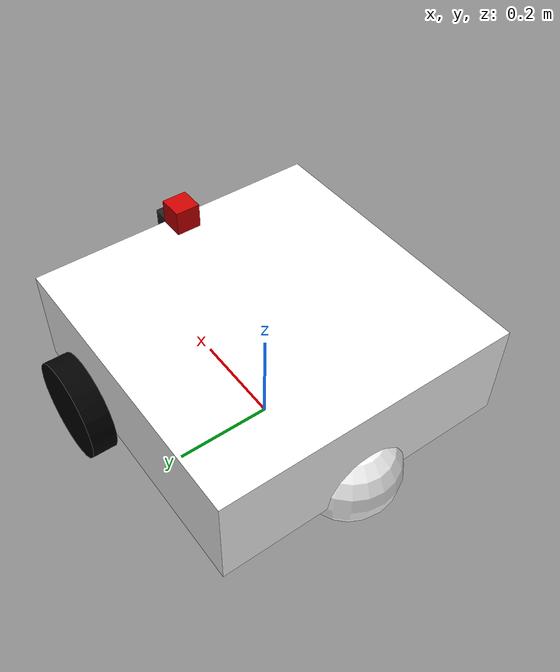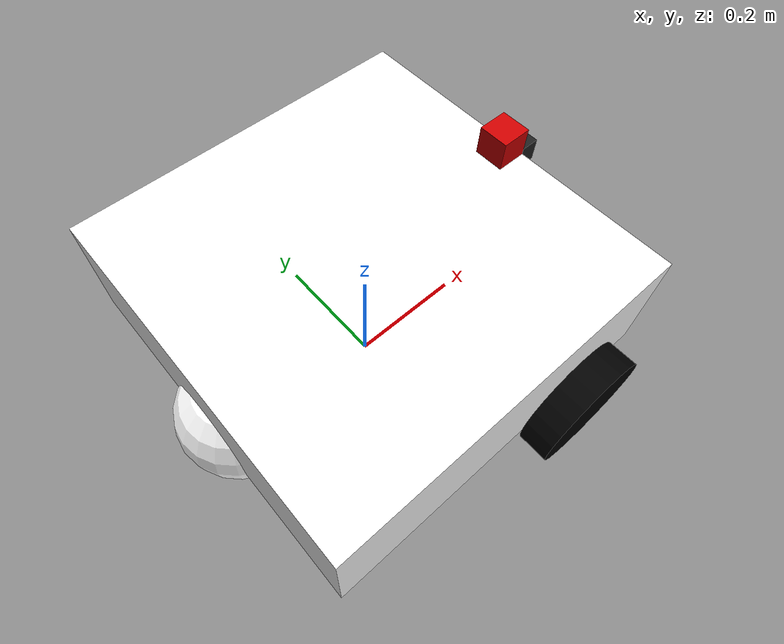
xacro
<?xml version='1.0'?>
<robot name="robot" xmlns:xacro="http://www.ros.org/wiki/xacro">
    <xacro:include filename="materials.xacro" />
    <xacro:include filename="wheel.xacro" />
    <xacro:include filename="inertial.xacro" />

    <ros2_control name="GazeboSimSystem" type="system">
        <hardware>
            <plugin>gz_ros2_control/GazeboSimSystem</plugin>
        </hardware>
        <joint name="wheel_left_joint">
            <command_interface name="velocity"/>
            <state_interface name="position"/>
            <state_interface name="velocity">
                <param name="initial_value">0.0</param>
            </state_interface>
        </joint>
        <joint name="wheel_right_joint">
            <command_interface name="velocity"/>
            <state_interface name="position"/>
            <state_interface name="velocity">
                <param name="initial_value">0.0</param>
            </state_interface>
        </joint>
    </ros2_control>

    <gazebo>
        <plugin filename="gz_ros2_control-system"
        name="gz_ros2_control::GazeboSimROS2ControlPlugin">
            <parameters>
            $(find robot_scene)/config/diff_control.yaml
            </parameters>
        </plugin>
    </gazebo>

    <link name='base_link'>
        <origin xyz="0.0 0.0 0.1" rpy="0.0 0 0.0"/>
        <visual name='base_visual'>
            <origin xyz="0.0 0.0 0.2" rpy="0.0 0.0 0.0"/>
            <geometry><box size="0.6 0.6 0.2"/></geometry>
            <material name="white"/>
        </visual>
        <xacro:inertial_box mass="1" x="0.6" y="0.6" z="0.2">
            <origin xyz="0 0 0.2" rpy="0 0 0"/>
        </xacro:inertial_box>
        <collision>
            <origin xyz="0 0 0.2" rpy="0 0 0"/>
            <geometry><box size="0.6 0.6 0.2"/></geometry>
        </collision>
    </link>

    <link name="caster_link">
        <visual name="caster_visual">
            <origin xyz="0 0 0" rpy="0 0 0"/>
            <geometry><sphere radius="0.1"/></geometry>
            <material name="white"/>
        </visual>
        <collision name="caster_collision">
            <origin xyz="0 0 0" rpy="0 0 0"/>
            <geometry><sphere radius="0.1"/></geometry>
        </collision>
        <xacro:inertial_sphere mass="0.05" radius="0.1">
            <origin xyz="0 0 0" rpy="0 0 0"/>
        </xacro:inertial_sphere>
    </link>

    <joint name="caster_joint" type="fixed">
        <origin xyz="-0.25 0 0.1" rpy="0 0 0"/>
        <parent link="base_link"/>
        <child link="caster_link"/>
    </joint>

    <gazebo reference="caster_link">
        <mu1>0.0</mu1>
        <mu2>0.0</mu2>
        <kp>1000000.0</kp>
        <kd>100.0</kd>
        <minDepth>0.001</minDepth>
        <maxVel>1.0</maxVel>
    </gazebo>

    <xacro:wheel side="left" x="0.15" y="0.325" z="0.1"/>
    <xacro:wheel side="right" x="0.15" y="-0.325" z="0.1"/>

    <link name="camera_link">
        <visual name="camera_link_visual">
         <origin xyz="0 0 0" rpy=" 0 0 0"/>
         <geometry><box size="0.04 0.04 0.04"/></geometry>
        </visual>

        <collision name="camera_link_colision">
         <origin xyz="0 0 0" rpy=" 0 0 0"/>
         <geometry><box size="0.04 0.04 0.04"/></geometry>
        </collision>

        <inertial name="camera_link_inertial">
         <origin xyz="0 0 0" rpy=" 0 0 0"/>
            <mass value="0.1"/>
            <inertia ixx="1e-3" ixy="0" ixz="0"
                    iyy="1e-3" iyz="0"
                    izz="1e-3"/>
        </inertial>
    </link>
    <joint name="camera_joint" type="fixed">
        <origin xyz="0.32 0 0.28" rpy="0 0 0"/>
        <parent link="base_link"/>
        <child link="camera_link"/>
    </joint>

    <gazebo reference="camera_link">
        <material>Gazebo/Black</material>

        <sensor name="camera" type="camera">
            <pose> 0 0 0 0 0 0 </pose>
            <visualize>true</visualize>
            <update_rate>10</update_rate>
            <camera>
                <camera_info_topic>/camera/camera_info</camera_info_topic>
                <horizontal_fov>1.089</horizontal_fov>
                <image>
                    <format>R8G8B8</format>
                    <width>720</width>
                    <height>640</height>
                </image>
                <clip>
                    <near>0.05</near>
                    <far>8.0</far>
                </clip>
            </camera>
            <topic>/camera/image_raw</topic>
            <gz_frame_id>diff_drive/camera_link</gz_frame_id>
        </sensor>
    </gazebo>

    <link name="lidar_link">
        <visual name='lidar_visual'>
            <origin xyz="0 0 0" rpy=" 0 0 0"/>
            <geometry><box size="0.05 0.05 0.05"/></geometry>
            <material name="red"/>
        </visual>
        <inertial name="lidar_link_inertial">
         <origin xyz="0 0 0" rpy=" 0 0 0"/>
            <mass value="0.1"/>
            <inertia ixx="1e-3" ixy="0" ixz="0"
                    iyy="1e-3" iyz="0"
                    izz="1e-3"/>
        </inertial>
        <collision>
            <origin xyz="0 0 0" rpy="0 0 0"/>
                <geometry><box size="0.05 0.05 0.05"/></geometry>
        </collision>
    </link>
    <joint name="lidar_joint" type="fixed">
        <origin xyz="0.275 0 0.325" rpy="0 0 0"/>
        <child link="lidar_link"/>
        <parent link="base_link"/>
        <axis xyz="0 0 1"/>
    </joint>

    <gazebo reference="lidar_link">
     <sensor name='gpu_lidar' type='gpu_lidar'>
          <pose>0 0 0 0 0 0</pose>
          <topic>/scan</topic>
          <gz_frame_id>diff_drive/lidar_link</gz_frame_id>
          <update_rate>10</update_rate>
          <lidar>
            <scan>
              <horizontal>
                <samples>640</samples>
                <resolution>1</resolution>
                <min_angle>-1.85</min_angle>
                <max_angle>1.85</max_angle>
              </horizontal>
              <vertical>
                <samples>1</samples>
                <resolution>1</resolution>
                <min_angle>0.0</min_angle>
                <max_angle>0.0</max_angle>
              </vertical>
            </scan>
            <range>
              <min>0.08</min>
              <max>10.0</max>
              <resolution>0.01</resolution>
            </range>
          </lidar>
          <visualize>true</visualize>
        </sensor>
    </gazebo>

</robot>

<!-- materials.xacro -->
<robot>
  <material name="black">
    <color rgba="0.0 0.0 0.0 1.0"/>
  </material>

  <material name="blue">
    <color rgba="0.0 0.0 0.8 1.0"/>
  </material>

  <material name="green">
    <color rgba="${30/255} ${255/255} ${30/255} 1.0"/>
  </material>

  <material name="grey">
    <color rgba="0.2 0.2 0.2 1.0"/>
  </material>

  <material name="orange">
    <color rgba="${255/255} ${108/255} ${10/255} 1.0"/>
  </material>

  <material name="brown">
    <color rgba="${222/255} ${207/255} ${195/255} 1.0"/>
  </material>

  <material name="red">
    <color rgba="0.8 0.0 0.0 1.0"/>
  </material>

  <material name="white">
    <color rgba="1.0 1.0 1.0 1.0"/>
  </material>

</robot>

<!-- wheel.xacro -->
<robot name="diff_drive" xmlns:xacro="http://www.ros.org/wiki/xacro">
<xacro:macro name="wheel" params="side x y z">
    <link name='wheel_${side}'>
        <visual name='wheel_${side}_visual'>
            <origin xyz="0 0 0" rpy=" 0 0 0"/>
            <geometry><cylinder length="0.05" radius="0.1"/></geometry>
            <material name="black"/>
        </visual>
        <xacro:inertial_cylinder mass="0.1" length="0.05" radius="0.1">
            <origin xyz="0 0 0" rpy="0 0 0"/>
        </xacro:inertial_cylinder>
        <collision>
            <origin xyz="0 0 0" rpy="0 0 0"/>
            <geometry><cylinder radius="0.1" length="0.05"/></geometry>
        </collision>
    </link>
    <joint name="wheel_${side}_joint" type="continuous">
        <origin xyz="${x} ${y} ${z}" rpy="${-pi/2} 0 0"/>
        <child link="wheel_${side}"/>
        <axis xyz="0 0 1"/>
        <parent link="base_link"/>
        <limit effort="50" velocity="100"/>
        <joint_properties damping="0" friction="0.01"/>
    </joint>

    <gazebo reference="wheel_${side}">
        <mu1>1.0</mu1>
        <mu2>1.0</mu2>
        <kp>1000000.0</kp>
        <kd>100.0</kd>
        <minDepth>0.001</minDepth>
        <maxVel>1.0</maxVel>
    </gazebo>

</xacro:macro>
</robot>
